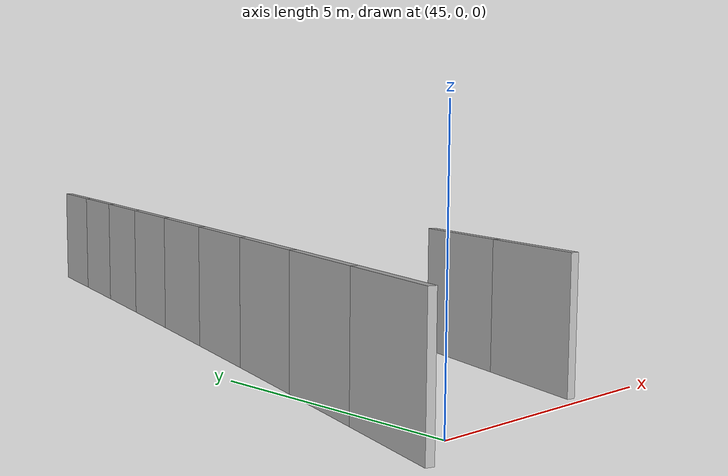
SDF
<?xml version="1.0" ?>
<sdf version="1.6">
  <model name="sps_4519">
    <pose frame="">0 0 0 0 -0 0</pose>
    <static>1</static>
    <self_collide>0</self_collide>
    <allow_auto_disable>0</allow_auto_disable>
    <link name="Wall4419">
      <kinematic>0</kinematic>
      <gravity>1</gravity>
      <self_collide>0</self_collide>
      <collision name="collision">
        <geometry>
          <box>
            <size>2.25468 0.15 2.5</size>
          </box>
        </geometry>
        <pose frame="">0 0 0 0 -0 0</pose>
      </collision>
      <visual name="visual">
        <geometry>
          <box>
            <size>2.25468 0.15 2.5</size>
          </box>
        </geometry>
        <pose frame="">0 0 0 0 -0 0</pose>
        <cast_shadows>1</cast_shadows>
        <transparency>0.0</transparency>
      </visual>
      <pose frame="">48.8299 1.2726 1.25 0 -0 1.26636</pose>
    </link>
    <link name="Wall4420">
      <kinematic>0</kinematic>
      <gravity>1</gravity>
      <self_collide>0</self_collide>
      <collision name="collision">
        <geometry>
          <box>
            <size>2.25391 0.15 2.5</size>
          </box>
        </geometry>
        <pose frame="">0 0 0 0 -0 0</pose>
      </collision>
      <visual name="visual">
        <geometry>
          <box>
            <size>2.25391 0.15 2.5</size>
          </box>
        </geometry>
        <pose frame="">0 0 0 0 -0 0</pose>
        <cast_shadows>1</cast_shadows>
        <transparency>0.0</transparency>
      </visual>
      <pose frame="">49.503 3.42409 1.25 0 -0 1.2689</pose>
    </link>
    <link name="Wall6143">
      <kinematic>0</kinematic>
      <gravity>1</gravity>
      <self_collide>0</self_collide>
      <collision name="collision">
        <geometry>
          <box>
            <size>2.24479 0.15 2.5</size>
          </box>
        </geometry>
        <pose frame="">0 0 0 0 -0 0</pose>
      </collision>
      <visual name="visual">
        <geometry>
          <box>
            <size>2.24479 0.15 2.5</size>
          </box>
        </geometry>
        <pose frame="">0 0 0 0 -0 0</pose>
        <cast_shadows>1</cast_shadows>
        <transparency>0.0</transparency>
      </visual>
      <pose frame="">44.2056 0.372695 1.25 0 -0 1.26407</pose>
    </link>
    <link name="Wall6144">
      <kinematic>0</kinematic>
      <gravity>1</gravity>
      <self_collide>0</self_collide>
      <collision name="collision">
        <geometry>
          <box>
            <size>2.24428 0.15 2.5</size>
          </box>
        </geometry>
        <pose frame="">0 0 0 0 -0 0</pose>
      </collision>
      <visual name="visual">
        <geometry>
          <box>
            <size>2.24428 0.15 2.5</size>
          </box>
        </geometry>
        <pose frame="">0 0 0 0 -0 0</pose>
        <cast_shadows>1</cast_shadows>
        <transparency>0.0</transparency>
      </visual>
      <pose frame="">44.8807 2.51329 1.25 0 -0 1.2665</pose>
    </link>
    <link name="Wall6145">
      <kinematic>0</kinematic>
      <gravity>1</gravity>
      <self_collide>0</self_collide>
      <collision name="collision">
        <geometry>
          <box>
            <size>2.24487 0.15 2.5</size>
          </box>
        </geometry>
        <pose frame="">0 0 0 0 -0 0</pose>
      </collision>
      <visual name="visual">
        <geometry>
          <box>
            <size>2.24487 0.15 2.5</size>
          </box>
        </geometry>
        <pose frame="">0 0 0 0 -0 0</pose>
        <cast_shadows>1</cast_shadows>
        <transparency>0.0</transparency>
      </visual>
      <pose frame="">45.5509 4.65547 1.25 0 -0 1.26867</pose>
    </link>
    <link name="Wall6146">
      <kinematic>0</kinematic>
      <gravity>1</gravity>
      <self_collide>0</self_collide>
      <collision name="collision">
        <geometry>
          <box>
            <size>2.24485 0.15 2.5</size>
          </box>
        </geometry>
        <pose frame="">0 0 0 0 -0 0</pose>
      </collision>
      <visual name="visual">
        <geometry>
          <box>
            <size>2.24485 0.15 2.5</size>
          </box>
        </geometry>
        <pose frame="">0 0 0 0 -0 0</pose>
        <cast_shadows>1</cast_shadows>
        <transparency>0.0</transparency>
      </visual>
      <pose frame="">46.2161 6.79948 1.25 0 -0 1.27117</pose>
    </link>
    <link name="Wall6147">
      <kinematic>0</kinematic>
      <gravity>1</gravity>
      <self_collide>0</self_collide>
      <collision name="collision">
        <geometry>
          <box>
            <size>2.24466 0.15 2.5</size>
          </box>
        </geometry>
        <pose frame="">0 0 0 0 -0 0</pose>
      </collision>
      <visual name="visual">
        <geometry>
          <box>
            <size>2.24466 0.15 2.5</size>
          </box>
        </geometry>
        <pose frame="">0 0 0 0 -0 0</pose>
        <cast_shadows>1</cast_shadows>
        <transparency>0.0</transparency>
      </visual>
      <pose frame="">46.8762 8.94499 1.25 0 -0 1.27348</pose>
    </link>
    <link name="Wall6148">
      <kinematic>0</kinematic>
      <gravity>1</gravity>
      <self_collide>0</self_collide>
      <collision name="collision">
        <geometry>
          <box>
            <size>2.24478 0.15 2.5</size>
          </box>
        </geometry>
        <pose frame="">0 0 0 0 -0 0</pose>
      </collision>
      <visual name="visual">
        <geometry>
          <box>
            <size>2.24478 0.15 2.5</size>
          </box>
        </geometry>
        <pose frame="">0 0 0 0 -0 0</pose>
        <cast_shadows>1</cast_shadows>
        <transparency>0.0</transparency>
      </visual>
      <pose frame="">47.5313 11.092 1.25 0 -0 1.27582</pose>
    </link>
    <link name="Wall6149">
      <kinematic>0</kinematic>
      <gravity>1</gravity>
      <self_collide>0</self_collide>
      <collision name="collision">
        <geometry>
          <box>
            <size>2.24474 0.15 2.5</size>
          </box>
        </geometry>
        <pose frame="">0 0 0 0 -0 0</pose>
      </collision>
      <visual name="visual">
        <geometry>
          <box>
            <size>2.24474 0.15 2.5</size>
          </box>
        </geometry>
        <pose frame="">0 0 0 0 -0 0</pose>
        <cast_shadows>1</cast_shadows>
        <transparency>0.0</transparency>
      </visual>
      <pose frame="">48.1812 13.2406 1.25 0 -0 1.27832</pose>
    </link>
    <link name="Wall6150">
      <kinematic>0</kinematic>
      <gravity>1</gravity>
      <self_collide>0</self_collide>
      <collision name="collision">
        <geometry>
          <box>
            <size>2.24488 0.15 2.5</size>
          </box>
        </geometry>
        <pose frame="">0 0 0 0 -0 0</pose>
      </collision>
      <visual name="visual">
        <geometry>
          <box>
            <size>2.24488 0.15 2.5</size>
          </box>
        </geometry>
        <pose frame="">0 0 0 0 -0 0</pose>
        <cast_shadows>1</cast_shadows>
        <transparency>0.0</transparency>
      </visual>
      <pose frame="">48.826 15.3908 1.25 0 -0 1.28058</pose>
    </link>
    <link name="Wall6151">
      <kinematic>0</kinematic>
      <gravity>1</gravity>
      <self_collide>0</self_collide>
      <collision name="collision">
        <geometry>
          <box>
            <size>2.24463 0.15 2.5</size>
          </box>
        </geometry>
        <pose frame="">0 0 0 0 -0 0</pose>
      </collision>
      <visual name="visual">
        <geometry>
          <box>
            <size>2.24463 0.15 2.5</size>
          </box>
        </geometry>
        <pose frame="">0 0 0 0 -0 0</pose>
        <cast_shadows>1</cast_shadows>
        <transparency>0.0</transparency>
      </visual>
      <pose frame="">49.4658 17.5425 1.25 0 -0 1.28304</pose>
    </link>
  </model>
</sdf>
